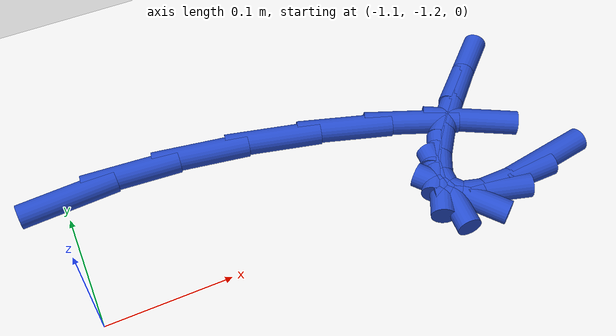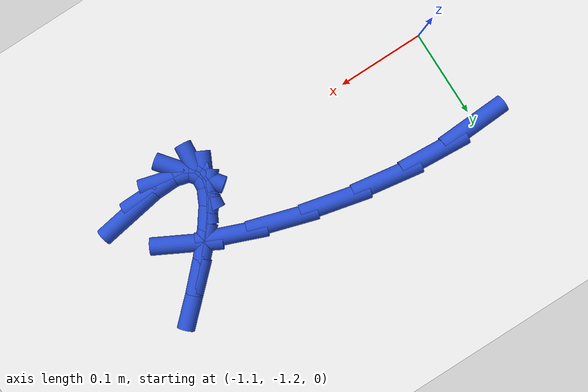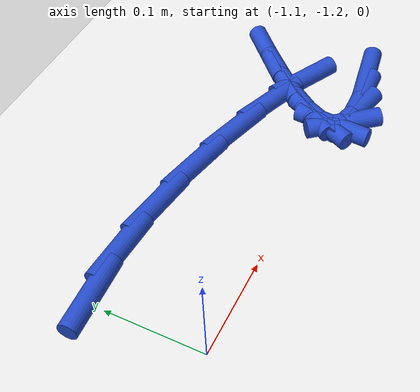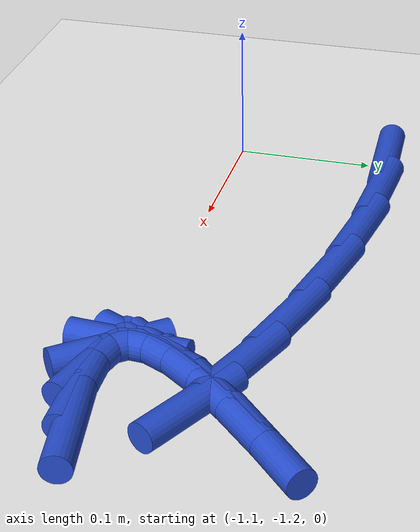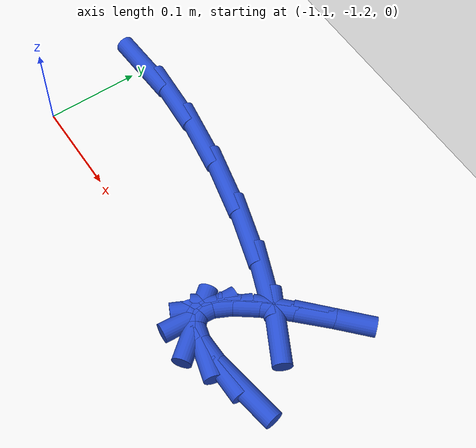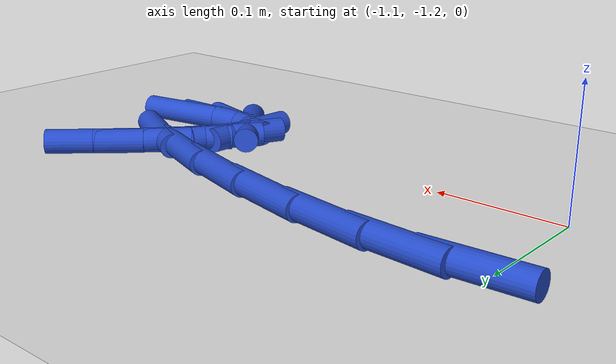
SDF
<sdf version="1.6">
 <world name="default">
  <model name="ground_plane">
   <static>1</static>
   <link name="link">
    <collision name="collision">
     <geometry><plane><normal>0 0 1</normal><size>100 100</size></plane></geometry>
     <surface><friction><ode><mu>100</mu><mu2>50</mu2></ode></friction></surface>
    </collision>
    <visual name="visual">
     <cast_shadows>0</cast_shadows>
     <geometry><plane><normal>0 0 1</normal><size>100 100</size></plane></geometry>
     <material>
      <script><uri>file://media/materials/scripts/gazebo.material</uri><name>Gazebo/WhiteGlow</name></script>
     </material>
    </visual>
   </link>
  </model>
  <model name="line">
   <link name="link_151">
    <pose>-1.0957624009204614 -1.0855746079692508 0.01 0 1.57 0.051196126564853416</pose>
    <collision name="collision">
     <geometry><cylinder><radius>0.01</radius><length>0.08</length></cylinder></geometry>
    </collision>
    <visual name="visual">
     <material>
      <script><name>Gazebo/Blue</name><uri>file://media/materials/scripts/gazebo.material</uri></script>
     </material>
     <geometry><cylinder><radius>0.01</radius><length>0.08</length></cylinder></geometry>
    </visual>
   </link>
   <link name="link_152">
    <pose>-1.0427477649885195 -1.0828580901731477 0.01 0 1.57 -0.06876177352680765</pose>
    <collision name="collision">
     <geometry><cylinder><radius>0.01</radius><length>0.08</length></cylinder></geometry>
    </collision>
    <visual name="visual">
     <material>
      <script><name>Gazebo/Blue</name><uri>file://media/materials/scripts/gazebo.material</uri></script>
     </material>
     <geometry><cylinder><radius>0.01</radius><length>0.08</length></cylinder></geometry>
    </visual>
   </link>
   <link name="link_153">
    <pose>-0.9842173254206337 -1.0868891021253322 0.01 0 1.57 -0.15702613189038675</pose>
    <collision name="collision">
     <geometry><cylinder><radius>0.01</radius><length>0.08</length></cylinder></geometry>
    </collision>
    <visual name="visual">
     <material>
      <script><name>Gazebo/Blue</name><uri>file://media/materials/scripts/gazebo.material</uri></script>
     </material>
     <geometry><cylinder><radius>0.01</radius><length>0.08</length></cylinder></geometry>
    </visual>
   </link>
   <link name="link_154">
    <pose>-0.9233676322706451 -1.0965234095740504 0.01 0 1.57 -0.22866662454136197</pose>
    <collision name="collision">
     <geometry><cylinder><radius>0.01</radius><length>0.08</length></cylinder></geometry>
    </collision>
    <visual name="visual">
     <material>
      <script><name>Gazebo/Blue</name><uri>file://media/materials/scripts/gazebo.material</uri></script>
     </material>
     <geometry><cylinder><radius>0.01</radius><length>0.08</length></cylinder></geometry>
    </visual>
   </link>
   <link name="link_155">
    <pose>-0.8637260658376128 -1.1104042282182511 0.01 0 1.57 -0.2964407631157218</pose>
    <collision name="collision">
     <geometry><cylinder><radius>0.01</radius><length>0.08</length></cylinder></geometry>
    </collision>
    <visual name="visual">
     <material>
      <script><name>Gazebo/Blue</name><uri>file://media/materials/scripts/gazebo.material</uri></script>
     </material>
     <geometry><cylinder><radius>0.01</radius><length>0.08</length></cylinder></geometry>
    </visual>
   </link>
   <link name="link_156">
    <pose>-0.8088200064205966 -1.1271747737568838 0.01 0 1.57 -0.37395067477065713</pose>
    <collision name="collision">
     <geometry><cylinder><radius>0.01</radius><length>0.08</length></cylinder></geometry>
    </collision>
    <visual name="visual">
     <material>
      <script><name>Gazebo/Blue</name><uri>file://media/materials/scripts/gazebo.material</uri></script>
     </material>
     <geometry><cylinder><radius>0.01</radius><length>0.08</length></cylinder></geometry>
    </visual>
   </link>
   <link name="link_157">
    <pose>-0.7621768343186553 -1.145478261888897 0.01 0 1.57 -0.4875289610712857</pose>
    <collision name="collision">
     <geometry><cylinder><radius>0.01</radius><length>0.08</length></cylinder></geometry>
    </collision>
    <visual name="visual">
     <material>
      <script><name>Gazebo/Blue</name><uri>file://media/materials/scripts/gazebo.material</uri></script>
     </material>
     <geometry><cylinder><radius>0.01</radius><length>0.08</length></cylinder></geometry>
    </visual>
   </link>
   <link name="link_161">
    <pose>-0.7287806250428319 -1.2068859543297377 0.01 0 1.57 0.16209193583406883</pose>
    <collision name="collision">
     <geometry><cylinder><radius>0.01</radius><length>0.08</length></cylinder></geometry>
    </collision>
    <visual name="visual">
     <material>
      <script><name>Gazebo/Blue</name><uri>file://media/materials/scripts/gazebo.material</uri></script>
     </material>
     <geometry><cylinder><radius>0.01</radius><length>0.08</length></cylinder></geometry>
    </visual>
   </link>
   <link name="link_162">
    <pose>-0.764078227349325 -1.212658051418752 0.01 0 1.57 0.01833679401425978</pose>
    <collision name="collision">
     <geometry><cylinder><radius>0.01</radius><length>0.08</length></cylinder></geometry>
    </collision>
    <visual name="visual">
     <material>
      <script><name>Gazebo/Blue</name><uri>file://media/materials/scripts/gazebo.material</uri></script>
     </material>
     <geometry><cylinder><radius>0.01</radius><length>0.08</length></cylinder></geometry>
    </visual>
   </link>
   <link name="link_163">
    <pose>-0.790022451347168 -1.2131338386371722 0.01 0 1.57 -0.2707092172738132</pose>
    <collision name="collision">
     <geometry><cylinder><radius>0.01</radius><length>0.08</length></cylinder></geometry>
    </collision>
    <visual name="visual">
     <material>
      <script><name>Gazebo/Blue</name><uri>file://media/materials/scripts/gazebo.material</uri></script>
     </material>
     <geometry><cylinder><radius>0.01</radius><length>0.08</length></cylinder></geometry>
    </visual>
   </link>
   <link name="link_164">
    <pose>-0.8062689570415645 -1.2086250787153103 0.01 0 1.57 -0.9018872338024767</pose>
    <collision name="collision">
     <geometry><cylinder><radius>0.01</radius><length>0.08</length></cylinder></geometry>
    </collision>
    <visual name="visual">
     <material>
      <script><name>Gazebo/Blue</name><uri>file://media/materials/scripts/gazebo.material</uri></script>
     </material>
     <geometry><cylinder><radius>0.01</radius><length>0.08</length></cylinder></geometry>
    </visual>
   </link>
   <link name="link_165">
    <pose>-0.8135188283311614 -1.1994535998572995 0.01 0 1.57 1.4935634438420813</pose>
    <collision name="collision">
     <geometry><cylinder><radius>0.01</radius><length>0.08</length></cylinder></geometry>
    </collision>
    <visual name="visual">
     <material>
      <script><name>Gazebo/Blue</name><uri>file://media/materials/scripts/gazebo.material</uri></script>
     </material>
     <geometry><cylinder><radius>0.01</radius><length>0.08</length></cylinder></geometry>
    </visual>
   </link>
   <link name="link_166">
    <pose>-0.8124731491146069 -1.1859412302672718 0.01 0 1.57 1.1128951802247773</pose>
    <collision name="collision">
     <geometry><cylinder><radius>0.01</radius><length>0.08</length></cylinder></geometry>
    </collision>
    <visual name="visual">
     <material>
      <script><name>Gazebo/Blue</name><uri>file://media/materials/scripts/gazebo.material</uri></script>
     </material>
     <geometry><cylinder><radius>0.01</radius><length>0.08</length></cylinder></geometry>
    </visual>
   </link>
   <link name="link_167">
    <pose>-0.803833003290549 -1.1684097981493602 0.01 0 1.57 0.9390947101106347</pose>
    <collision name="collision">
     <geometry><cylinder><radius>0.01</radius><length>0.08</length></cylinder></geometry>
    </collision>
    <visual name="visual">
     <material>
      <script><name>Gazebo/Blue</name><uri>file://media/materials/scripts/gazebo.material</uri></script>
     </material>
     <geometry><cylinder><radius>0.01</radius><length>0.08</length></cylinder></geometry>
    </visual>
   </link>
   <link name="link_168">
    <pose>-0.7882994747576345 -1.1471811317076959 0.01 0 1.57 0.8474434278458891</pose>
    <collision name="collision">
     <geometry><cylinder><radius>0.01</radius><length>0.08</length></cylinder></geometry>
    </collision>
    <visual name="visual">
     <material>
      <script><name>Gazebo/Blue</name><uri>file://media/materials/scripts/gazebo.material</uri></script>
     </material>
     <geometry><cylinder><radius>0.01</radius><length>0.08</length></cylinder></geometry>
    </visual>
   </link>
   <link name="link_169">
    <pose>-0.7665736474145122 -1.1225770591464128 0.01 0 1.57 0.7934273428202276</pose>
    <collision name="collision">
     <geometry><cylinder><radius>0.01</radius><length>0.08</length></cylinder></geometry>
    </collision>
    <visual name="visual">
     <material>
      <script><name>Gazebo/Blue</name><uri>file://media/materials/scripts/gazebo.material</uri></script>
     </material>
     <geometry><cylinder><radius>0.01</radius><length>0.08</length></cylinder></geometry>
    </visual>
   </link>
   <link name="link_170">
    <pose>-0.7393566051598288 -1.0949194086696419 0.01 0 1.57 0.7594766963310857</pose>
    <collision name="collision">
     <geometry><cylinder><radius>0.01</radius><length>0.08</length></cylinder></geometry>
    </collision>
    <visual name="visual">
     <material>
      <script><name>Gazebo/Blue</name><uri>file://media/materials/scripts/gazebo.material</uri></script>
     </material>
     <geometry><cylinder><radius>0.01</radius><length>0.08</length></cylinder></geometry>
    </visual>
   </link>
  </model>
 </world>
</sdf>
